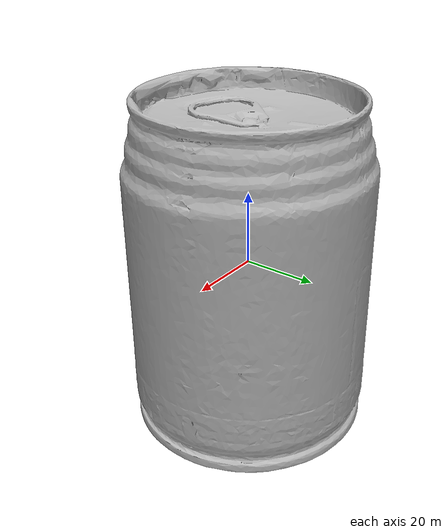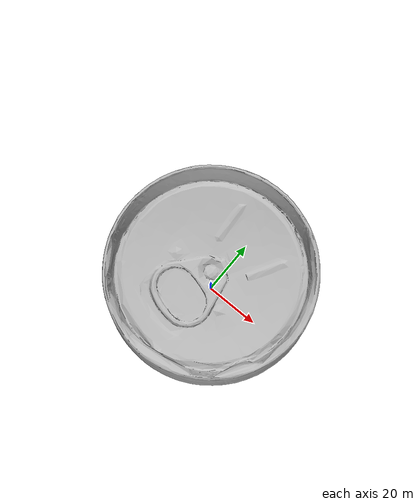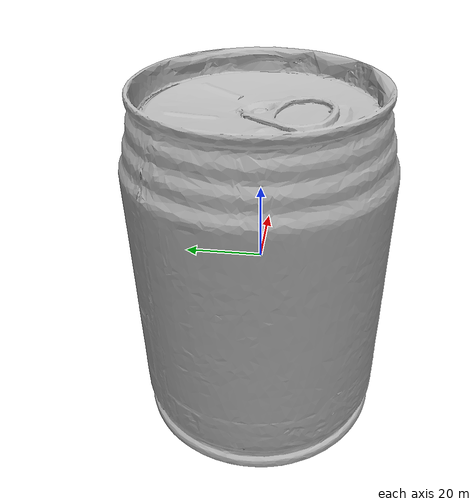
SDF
<sdf version="1.4">
 <world name="default">
  <light name="light1" type="point">
   <pose>0 0 1 0 0 0</pose>
   <diffuse>3 3 3 1</diffuse>
   <specular>3 3 3 1</specular>
  </light>
  <light name="light2" type="point">
   <pose>0 0.5 2 0 0 0</pose>
   <diffuse>1 1 1 1</diffuse>
   <specular>1 1 1 1</specular>
  </light>
  <light name="light3" type="point">
   <pose>0 0.5 2 0 0 0</pose>
   <diffuse>3 3 3 1</diffuse>
   <specular>3 3 3 1</specular>
  </light>
  <scene><ambient>0.7 0.7 0.7</ambient></scene>
  <model name="box1">
   <link name="link_box1">
    <collision name="default">
     <geometry>
      <mesh><uri>model://wooden_puzzle1/collision_meshes/collision.obj</uri><scale>1.0 1.0 1.0</scale></mesh>
     </geometry>
     <surface>
      <friction><ode><mu>0.5</mu><mu2>0.5</mu2></ode></friction>
      <contact><ode><max_vel>0</max_vel><min_depth>0.0001</min_depth><kp>1e8</kp></ode></contact>
     </surface>
    </collision>
    <visual name="default">
     <geometry>
      <mesh><uri>model://wooden_puzzle1/visual_meshes/visual.dae</uri><scale>1.0 1.0 1.0</scale></mesh>
     </geometry>
    </visual>
    <inertial>
     <mass>0.020629532635211945</mass>
     <pose>-0.0001735068071866408 7.972260937094688e-05 -9.191555000143126e-05 -0.07784798349428995 -0.2636160818751574 -0.552872324185161</pose>
     <inertia>
      <ixx>3.8922285e-06</ixx>
      <iyy>3.817302e-06</iyy>
      <izz>3.8628423e-06</izz>
      <ixy>0</ixy>
      <ixz>0</ixz>
      <iyz>0</iyz>
     </inertia>
    </inertial>
   </link>
   <pose>0.2830832600593567 -0.38285765051841736 0.016802018508315086 0.010511981180724684 -0.009455317489118669 1.5700991630481118</pose>
  </model>
  <model name="box3">
   <link name="link_box3">
    <collision name="default">
     <geometry>
      <mesh><uri>model://wooden_puzzle2/collision_meshes/collision.obj</uri><scale>1.0 1.0 1.0</scale></mesh>
     </geometry>
     <surface>
      <friction><ode><mu>0.5</mu><mu2>0.5</mu2></ode></friction>
      <contact><ode><max_vel>0</max_vel><min_depth>0.0001</min_depth><kp>1e8</kp></ode></contact>
     </surface>
    </collision>
    <visual name="default">
     <geometry>
      <mesh><uri>model://wooden_puzzle2/visual_meshes/visual.dae</uri><scale>1.0 1.0 1.0</scale></mesh>
     </geometry>
    </visual>
    <inertial>
     <mass>0.05583015829324722</mass>
     <pose>2.7402536943554878e-05 4.997663199901581e-05 6.587122334167361e-05 -0.19203199902598803 0.6112853789707493 -0.6338693450254121</pose>
     <inertia>
      <ixx>1.0378231e-05</ixx>
      <iyy>1.06642165e-05</iyy>
      <izz>1.0512509e-05</izz>
      <ixy>0</ixy>
      <ixz>0</ixz>
      <iyz>0</iyz>
     </inertia>
    </inertial>
   </link>
   <pose>0.23903246223926544 -0.04685736075043678 0.01691773347556591 0.02084796517080797 0.0007216519537274355 3.0684153778499916</pose>
  </model>
  <model name="can1">
   <link name="link_can1">
    <collision name="default">
     <geometry>
      <mesh><uri>model://pepsi/collision_meshes/collision.obj</uri><scale>1.0 1.0 1.0</scale></mesh>
     </geometry>
     <surface>
      <friction><ode><mu>0.5</mu><mu2>0.5</mu2></ode></friction>
      <contact><ode><max_vel>0</max_vel><min_depth>0.0001</min_depth><kp>1e8</kp></ode></contact>
     </surface>
    </collision>
    <visual name="default">
     <geometry><mesh><uri>model://pepsi/visual_meshes/visual.dae</uri><scale>1.0 1.0 1.0</scale></mesh></geometry>
    </visual>
    <inertial>
     <mass>0.49348899722099304</mass>
     <pose>-7.5590331107378e-05 2.9931279641459696e-05 -0.0003384356386959553 -0.0010677622415870868 -0.0021735774955872703 0.5673701275352521</pose>
     <inertia>
      <ixx>0.0009831247</ixx>
      <iyy>0.0009824084</iyy>
      <izz>0.00020924417</izz>
      <ixy>0</ixy>
      <ixz>0</ixz>
      <iyz>0</iyz>
     </inertia>
    </inertial>
   </link>
   <pose>-0.03235002979636192 0.18090060353279114 0.07449633628129959 -1.9340389257085716e-05 1.7495669545268675e-06 2.3292519324032184</pose>
  </model>
  <model name="can2">
   <link name="link_can2">
    <collision name="default">
     <geometry>
      <mesh><uri>model://redbull/collision_meshes/collision.obj</uri><scale>1.0 1.0 1.0</scale></mesh>
     </geometry>
     <surface>
      <friction><ode><mu>0.5</mu><mu2>0.5</mu2></ode></friction>
      <contact><ode><max_vel>0</max_vel><min_depth>0.0001</min_depth><kp>1e8</kp></ode></contact>
     </surface>
    </collision>
    <visual name="default">
     <geometry>
      <mesh><uri>model://redbull/visual_meshes/visual.dae</uri><scale>1.0 1.0 1.0</scale></mesh>
     </geometry>
    </visual>
    <inertial>
     <mass>0.3443465232849121</mass>
     <pose>-2.2127078409539536e-05 -0.00012659528874792159 -0.0006860987632535398 0.0011367237692686564 -0.010800964902263904 0.5859097418646089</pose>
     <inertia>
      <ixx>0.0003237599</ixx>
      <iyy>0.00032403314</iyy>
      <izz>0.00019212745</izz>
      <ixy>0</ixy>
      <ixz>0</ixz>
      <iyz>0</iyz>
     </inertia>
    </inertial>
   </link>
   <pose>-0.04763175919651985 0.36740627884864807 0.04638563469052315 -0.010489742644022929 0.007260707675405113 0.16244301510123002</pose>
  </model>
  <physics type="ode">
   <max_contacts>50</max_contacts>
   <ode>
    <solver><type>quick</type><iters>75</iters></solver>
    <constraints>
     <contact_max_correcting_vel>0</contact_max_correcting_vel>
     <contact_surface_layer>0</contact_surface_layer>
    </constraints>
   </ode>
  </physics>
 </world>
</sdf>
